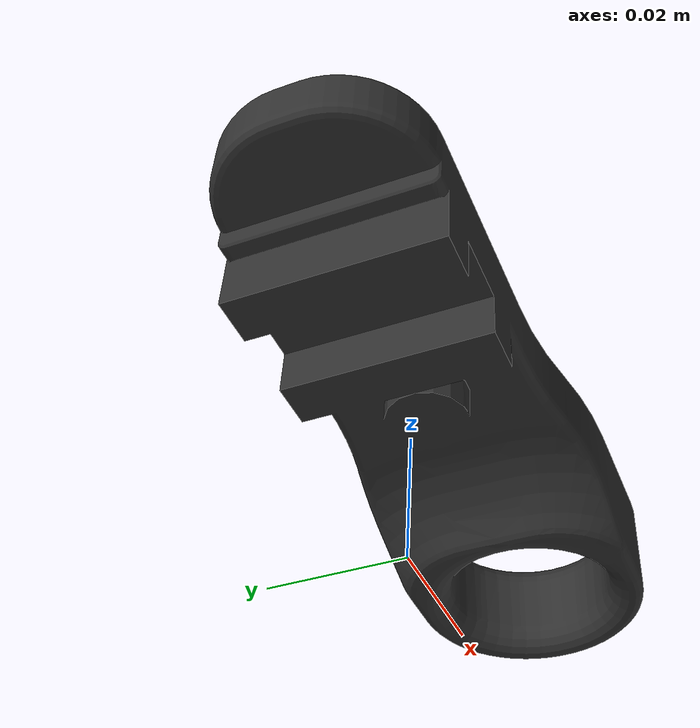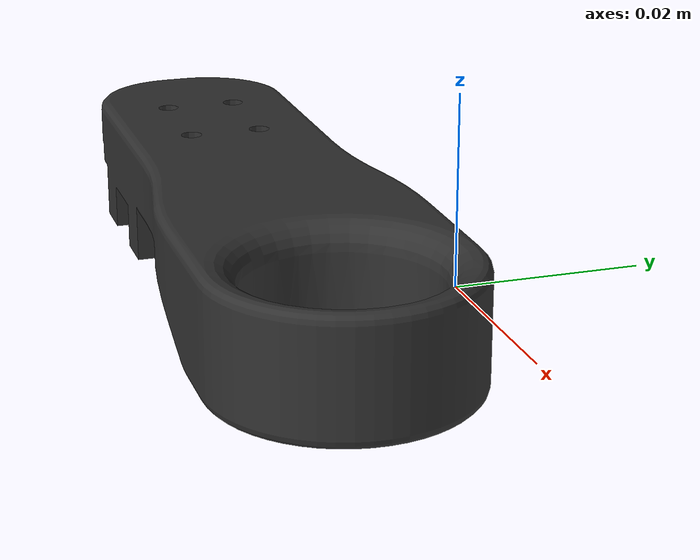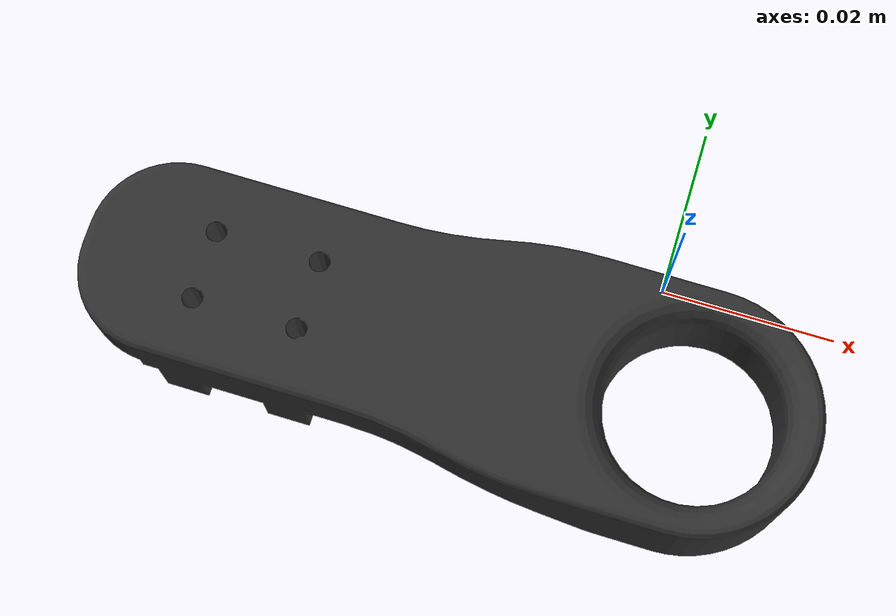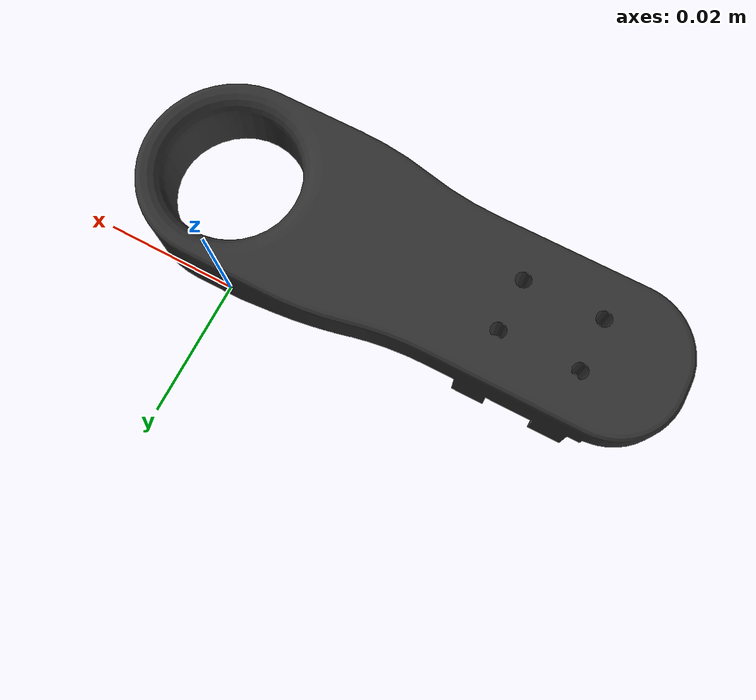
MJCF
<mujoco model="link7_master">
  <default>
    <default class="visual">
      <geom group="2" type="mesh" contype="0" conaffinity="0"/>
    </default>
    <default class="collision">
      <geom group="3" type="mesh"/>
    </default>
  </default>
  <asset>
    <material name="grey_metal.004" specular="0.5" shininess="0.09604875199999999" rgba="0.191349 0.191349 0.191349 1.000000"/>
    <mesh file="link7_master.obj"/>
    <mesh file="link7_master_collision_0.obj"/>
    <mesh file="link7_master_collision_1.obj"/>
    <mesh file="link7_master_collision_2.obj"/>
  </asset>
  <worldbody>
    <body name="link7_master">
      <geom material="grey_metal.004" mesh="link7_master" class="visual"/>
      <geom mesh="link7_master_collision_0" rgba="0.6537489957054659 0.20994645690527525 0.20711138612920033 1" class="collision"/>
      <geom mesh="link7_master_collision_1" rgba="0.6395708910154 0.8164081306301085 0.04465562498332254 1" class="collision"/>
      <geom mesh="link7_master_collision_2" rgba="0.971830334904823 0.3982013023749523 0.321987663594518 1" class="collision"/>
    </body>
  </worldbody>
</mujoco>
